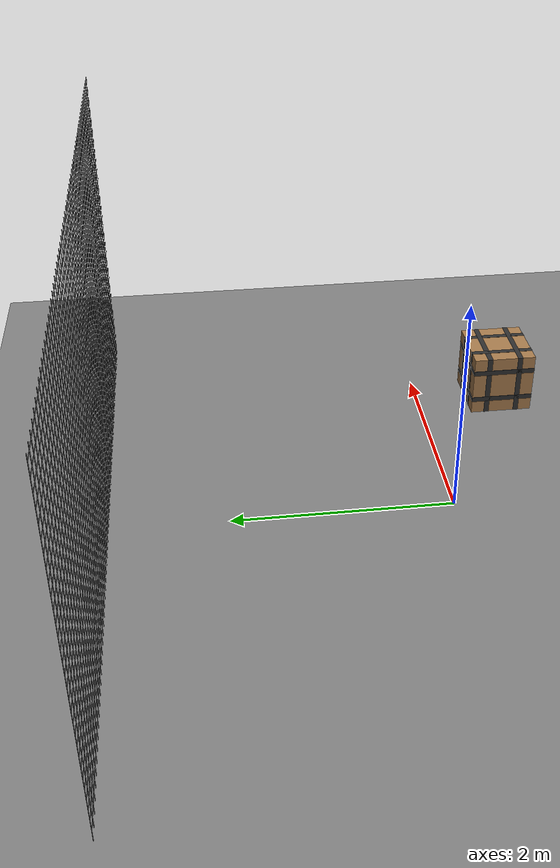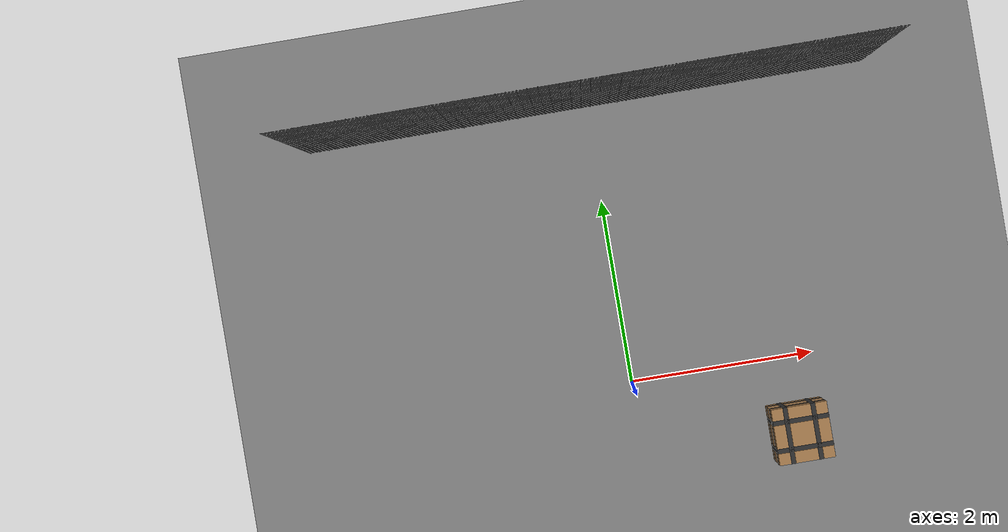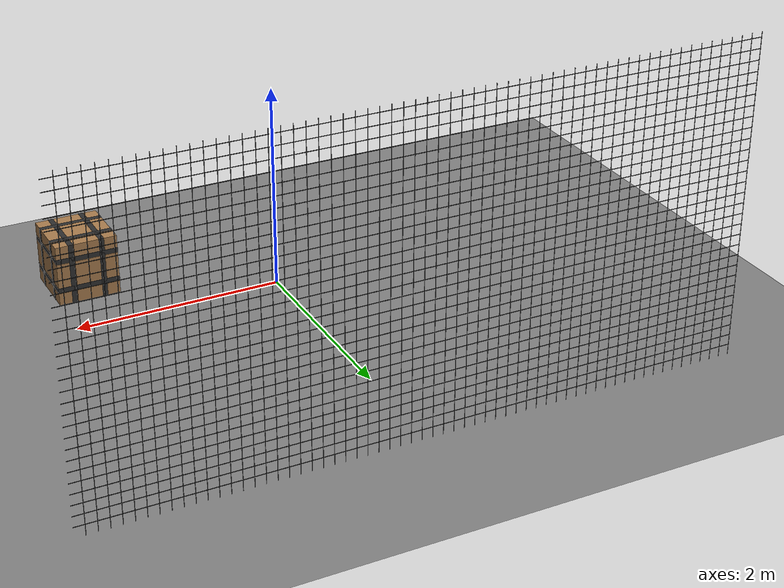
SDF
<sdf version="1.9">
 <world name="ecps295_cage20">
  <model name="ground_plane">
   <static>true</static>
   <link name="link">
    <collision name="collision">
     <geometry><plane><normal>0 0 1</normal><size>50 50</size></plane></geometry>
    </collision>
    <visual name="visual">
     <geometry><plane><normal>0 0 1</normal><size>50 50</size></plane></geometry>
     <material><ambient>0.5 0.5 0.5 1</ambient><diffuse>0.5 0.5 0.5 1</diffuse></material>
    </visual>
   </link>
  </model>
  <model name="net_n">
   <static>true</static>
   <link name="link">
    <collision name="c">
     <pose>0.000 3.050 1.525 0 0 0</pose>
     <geometry><box><size>6.100 0.020 3.050</size></box></geometry>
    </collision>
    <visual name="v0">
     <pose>-3.050 3.050 1.525 0 0 0.0000</pose>
     <geometry><box><size>0.004 0.004 3.050</size></box></geometry>
     <material><ambient>0.16 0.16 0.16 1</ambient><diffuse>0.16 0.16 0.16 1</diffuse></material>
    </visual>
    <visual name="v1">
     <pose>-2.950 3.050 1.525 0 0 0.0000</pose>
     <geometry><box><size>0.004 0.004 3.050</size></box></geometry>
     <material><ambient>0.16 0.16 0.16 1</ambient><diffuse>0.16 0.16 0.16 1</diffuse></material>
    </visual>
    <visual name="v2">
     <pose>-2.850 3.050 1.525 0 0 0.0000</pose>
     <geometry><box><size>0.004 0.004 3.050</size></box></geometry>
     <material><ambient>0.16 0.16 0.16 1</ambient><diffuse>0.16 0.16 0.16 1</diffuse></material>
    </visual>
    <visual name="v3">
     <pose>-2.750 3.050 1.525 0 0 0.0000</pose>
     <geometry><box><size>0.004 0.004 3.050</size></box></geometry>
     <material><ambient>0.16 0.16 0.16 1</ambient><diffuse>0.16 0.16 0.16 1</diffuse></material>
    </visual>
    <visual name="v4">
     <pose>-2.650 3.050 1.525 0 0 0.0000</pose>
     <geometry><box><size>0.004 0.004 3.050</size></box></geometry>
     <material><ambient>0.16 0.16 0.16 1</ambient><diffuse>0.16 0.16 0.16 1</diffuse></material>
    </visual>
    <visual name="v5">
     <pose>-2.550 3.050 1.525 0 0 0.0000</pose>
     <geometry><box><size>0.004 0.004 3.050</size></box></geometry>
     <material><ambient>0.16 0.16 0.16 1</ambient><diffuse>0.16 0.16 0.16 1</diffuse></material>
    </visual>
    <visual name="v6">
     <pose>-2.450 3.050 1.525 0 0 0.0000</pose>
     <geometry><box><size>0.004 0.004 3.050</size></box></geometry>
     <material><ambient>0.16 0.16 0.16 1</ambient><diffuse>0.16 0.16 0.16 1</diffuse></material>
    </visual>
    <visual name="v7">
     <pose>-2.350 3.050 1.525 0 0 0.0000</pose>
     <geometry><box><size>0.004 0.004 3.050</size></box></geometry>
     <material><ambient>0.16 0.16 0.16 1</ambient><diffuse>0.16 0.16 0.16 1</diffuse></material>
    </visual>
    <visual name="v8">
     <pose>-2.250 3.050 1.525 0 0 0.0000</pose>
     <geometry><box><size>0.004 0.004 3.050</size></box></geometry>
     <material><ambient>0.16 0.16 0.16 1</ambient><diffuse>0.16 0.16 0.16 1</diffuse></material>
    </visual>
    <visual name="v9">
     <pose>-2.150 3.050 1.525 0 0 0.0000</pose>
     <geometry><box><size>0.004 0.004 3.050</size></box></geometry>
     <material><ambient>0.16 0.16 0.16 1</ambient><diffuse>0.16 0.16 0.16 1</diffuse></material>
    </visual>
    <visual name="v10">
     <pose>-2.050 3.050 1.525 0 0 0.0000</pose>
     <geometry><box><size>0.004 0.004 3.050</size></box></geometry>
     <material><ambient>0.16 0.16 0.16 1</ambient><diffuse>0.16 0.16 0.16 1</diffuse></material>
    </visual>
    <visual name="v11">
     <pose>-1.950 3.050 1.525 0 0 0.0000</pose>
     <geometry><box><size>0.004 0.004 3.050</size></box></geometry>
     <material><ambient>0.16 0.16 0.16 1</ambient><diffuse>0.16 0.16 0.16 1</diffuse></material>
    </visual>
    <visual name="v12">
     <pose>-1.850 3.050 1.525 0 0 0.0000</pose>
     <geometry><box><size>0.004 0.004 3.050</size></box></geometry>
     <material><ambient>0.16 0.16 0.16 1</ambient><diffuse>0.16 0.16 0.16 1</diffuse></material>
    </visual>
    <visual name="v13">
     <pose>-1.750 3.050 1.525 0 0 0.0000</pose>
     <geometry><box><size>0.004 0.004 3.050</size></box></geometry>
     <material><ambient>0.16 0.16 0.16 1</ambient><diffuse>0.16 0.16 0.16 1</diffuse></material>
    </visual>
    <visual name="v14">
     <pose>-1.650 3.050 1.525 0 0 0.0000</pose>
     <geometry><box><size>0.004 0.004 3.050</size></box></geometry>
     <material><ambient>0.16 0.16 0.16 1</ambient><diffuse>0.16 0.16 0.16 1</diffuse></material>
    </visual>
    <visual name="v15">
     <pose>-1.550 3.050 1.525 0 0 0.0000</pose>
     <geometry><box><size>0.004 0.004 3.050</size></box></geometry>
     <material><ambient>0.16 0.16 0.16 1</ambient><diffuse>0.16 0.16 0.16 1</diffuse></material>
    </visual>
    <visual name="v16">
     <pose>-1.450 3.050 1.525 0 0 0.0000</pose>
     <geometry><box><size>0.004 0.004 3.050</size></box></geometry>
     <material><ambient>0.16 0.16 0.16 1</ambient><diffuse>0.16 0.16 0.16 1</diffuse></material>
    </visual>
    <visual name="v17">
     <pose>-1.350 3.050 1.525 0 0 0.0000</pose>
     <geometry><box><size>0.004 0.004 3.050</size></box></geometry>
     <material><ambient>0.16 0.16 0.16 1</ambient><diffuse>0.16 0.16 0.16 1</diffuse></material>
    </visual>
    <visual name="v18">
     <pose>-1.250 3.050 1.525 0 0 0.0000</pose>
     <geometry><box><size>0.004 0.004 3.050</size></box></geometry>
     <material><ambient>0.16 0.16 0.16 1</ambient><diffuse>0.16 0.16 0.16 1</diffuse></material>
    </visual>
    <visual name="v19">
     <pose>-1.150 3.050 1.525 0 0 0.0000</pose>
     <geometry><box><size>0.004 0.004 3.050</size></box></geometry>
     <material><ambient>0.16 0.16 0.16 1</ambient><diffuse>0.16 0.16 0.16 1</diffuse></material>
    </visual>
    <visual name="v20">
     <pose>-1.050 3.050 1.525 0 0 0.0000</pose>
     <geometry><box><size>0.004 0.004 3.050</size></box></geometry>
     <material><ambient>0.16 0.16 0.16 1</ambient><diffuse>0.16 0.16 0.16 1</diffuse></material>
    </visual>
    <visual name="v21">
     <pose>-0.950 3.050 1.525 0 0 0.0000</pose>
     <geometry><box><size>0.004 0.004 3.050</size></box></geometry>
     <material><ambient>0.16 0.16 0.16 1</ambient><diffuse>0.16 0.16 0.16 1</diffuse></material>
    </visual>
    <visual name="v22">
     <pose>-0.850 3.050 1.525 0 0 0.0000</pose>
     <geometry><box><size>0.004 0.004 3.050</size></box></geometry>
     <material><ambient>0.16 0.16 0.16 1</ambient><diffuse>0.16 0.16 0.16 1</diffuse></material>
    </visual>
    <visual name="v23">
     <pose>-0.750 3.050 1.525 0 0 0.0000</pose>
     <geometry><box><size>0.004 0.004 3.050</size></box></geometry>
     <material><ambient>0.16 0.16 0.16 1</ambient><diffuse>0.16 0.16 0.16 1</diffuse></material>
    </visual>
    <visual name="v24">
     <pose>-0.650 3.050 1.525 0 0 0.0000</pose>
     <geometry><box><size>0.004 0.004 3.050</size></box></geometry>
     <material><ambient>0.16 0.16 0.16 1</ambient><diffuse>0.16 0.16 0.16 1</diffuse></material>
    </visual>
    <visual name="v25">
     <pose>-0.550 3.050 1.525 0 0 0.0000</pose>
     <geometry><box><size>0.004 0.004 3.050</size></box></geometry>
     <material><ambient>0.16 0.16 0.16 1</ambient><diffuse>0.16 0.16 0.16 1</diffuse></material>
    </visual>
    <visual name="v26">
     <pose>-0.450 3.050 1.525 0 0 0.0000</pose>
     <geometry><box><size>0.004 0.004 3.050</size></box></geometry>
     <material><ambient>0.16 0.16 0.16 1</ambient><diffuse>0.16 0.16 0.16 1</diffuse></material>
    </visual>
    <visual name="v27">
     <pose>-0.350 3.050 1.525 0 0 0.0000</pose>
     <geometry><box><size>0.004 0.004 3.050</size></box></geometry>
     <material><ambient>0.16 0.16 0.16 1</ambient><diffuse>0.16 0.16 0.16 1</diffuse></material>
    </visual>
    <visual name="v28">
     <pose>-0.250 3.050 1.525 0 0 0.0000</pose>
     <geometry><box><size>0.004 0.004 3.050</size></box></geometry>
     <material><ambient>0.16 0.16 0.16 1</ambient><diffuse>0.16 0.16 0.16 1</diffuse></material>
    </visual>
    <visual name="v29">
     <pose>-0.150 3.050 1.525 0 0 0.0000</pose>
     <geometry><box><size>0.004 0.004 3.050</size></box></geometry>
     <material><ambient>0.16 0.16 0.16 1</ambient><diffuse>0.16 0.16 0.16 1</diffuse></material>
    </visual>
    <visual name="v30">
     <pose>-0.050 3.050 1.525 0 0 0.0000</pose>
     <geometry><box><size>0.004 0.004 3.050</size></box></geometry>
     <material><ambient>0.16 0.16 0.16 1</ambient><diffuse>0.16 0.16 0.16 1</diffuse></material>
    </visual>
    <visual name="v31">
     <pose>0.050 3.050 1.525 0 0 0.0000</pose>
     <geometry><box><size>0.004 0.004 3.050</size></box></geometry>
     <material><ambient>0.16 0.16 0.16 1</ambient><diffuse>0.16 0.16 0.16 1</diffuse></material>
    </visual>
    <visual name="v32">
     <pose>0.150 3.050 1.525 0 0 0.0000</pose>
     <geometry><box><size>0.004 0.004 3.050</size></box></geometry>
     <material><ambient>0.16 0.16 0.16 1</ambient><diffuse>0.16 0.16 0.16 1</diffuse></material>
    </visual>
    <visual name="v33">
     <pose>0.250 3.050 1.525 0 0 0.0000</pose>
     <geometry><box><size>0.004 0.004 3.050</size></box></geometry>
     <material><ambient>0.16 0.16 0.16 1</ambient><diffuse>0.16 0.16 0.16 1</diffuse></material>
    </visual>
    <visual name="v34">
     <pose>0.350 3.050 1.525 0 0 0.0000</pose>
     <geometry><box><size>0.004 0.004 3.050</size></box></geometry>
     <material><ambient>0.16 0.16 0.16 1</ambient><diffuse>0.16 0.16 0.16 1</diffuse></material>
    </visual>
    <visual name="v35">
     <pose>0.450 3.050 1.525 0 0 0.0000</pose>
     <geometry><box><size>0.004 0.004 3.050</size></box></geometry>
     <material><ambient>0.16 0.16 0.16 1</ambient><diffuse>0.16 0.16 0.16 1</diffuse></material>
    </visual>
    <visual name="v36">
     <pose>0.550 3.050 1.525 0 0 0.0000</pose>
     <geometry><box><size>0.004 0.004 3.050</size></box></geometry>
     <material><ambient>0.16 0.16 0.16 1</ambient><diffuse>0.16 0.16 0.16 1</diffuse></material>
    </visual>
    <visual name="v37">
     <pose>0.650 3.050 1.525 0 0 0.0000</pose>
     <geometry><box><size>0.004 0.004 3.050</size></box></geometry>
     <material><ambient>0.16 0.16 0.16 1</ambient><diffuse>0.16 0.16 0.16 1</diffuse></material>
    </visual>
    <visual name="v38">
     <pose>0.750 3.050 1.525 0 0 0.0000</pose>
     <geometry><box><size>0.004 0.004 3.050</size></box></geometry>
     <material><ambient>0.16 0.16 0.16 1</ambient><diffuse>0.16 0.16 0.16 1</diffuse></material>
    </visual>
    <visual name="v39">
     <pose>0.850 3.050 1.525 0 0 0.0000</pose>
     <geometry><box><size>0.004 0.004 3.050</size></box></geometry>
     <material><ambient>0.16 0.16 0.16 1</ambient><diffuse>0.16 0.16 0.16 1</diffuse></material>
    </visual>
    <visual name="v40">
     <pose>0.950 3.050 1.525 0 0 0.0000</pose>
     <geometry><box><size>0.004 0.004 3.050</size></box></geometry>
     <material><ambient>0.16 0.16 0.16 1</ambient><diffuse>0.16 0.16 0.16 1</diffuse></material>
    </visual>
    <visual name="v41">
     <pose>1.050 3.050 1.525 0 0 0.0000</pose>
     <geometry><box><size>0.004 0.004 3.050</size></box></geometry>
     <material><ambient>0.16 0.16 0.16 1</ambient><diffuse>0.16 0.16 0.16 1</diffuse></material>
    </visual>
    <visual name="v42">
     <pose>1.150 3.050 1.525 0 0 0.0000</pose>
     <geometry><box><size>0.004 0.004 3.050</size></box></geometry>
     <material><ambient>0.16 0.16 0.16 1</ambient><diffuse>0.16 0.16 0.16 1</diffuse></material>
    </visual>
    <visual name="v43">
     <pose>1.250 3.050 1.525 0 0 0.0000</pose>
     <geometry><box><size>0.004 0.004 3.050</size></box></geometry>
     <material><ambient>0.16 0.16 0.16 1</ambient><diffuse>0.16 0.16 0.16 1</diffuse></material>
    </visual>
    <visual name="v44">
     <pose>1.350 3.050 1.525 0 0 0.0000</pose>
     <geometry><box><size>0.004 0.004 3.050</size></box></geometry>
     <material><ambient>0.16 0.16 0.16 1</ambient><diffuse>0.16 0.16 0.16 1</diffuse></material>
    </visual>
    <visual name="v45">
     <pose>1.450 3.050 1.525 0 0 0.0000</pose>
     <geometry><box><size>0.004 0.004 3.050</size></box></geometry>
     <material><ambient>0.16 0.16 0.16 1</ambient><diffuse>0.16 0.16 0.16 1</diffuse></material>
    </visual>
    <visual name="v46">
     <pose>1.550 3.050 1.525 0 0 0.0000</pose>
     <geometry><box><size>0.004 0.004 3.050</size></box></geometry>
     <material><ambient>0.16 0.16 0.16 1</ambient><diffuse>0.16 0.16 0.16 1</diffuse></material>
    </visual>
    <visual name="v47">
     <pose>1.650 3.050 1.525 0 0 0.0000</pose>
     <geometry><box><size>0.004 0.004 3.050</size></box></geometry>
     <material><ambient>0.16 0.16 0.16 1</ambient><diffuse>0.16 0.16 0.16 1</diffuse></material>
    </visual>
    <visual name="v48">
     <pose>1.750 3.050 1.525 0 0 0.0000</pose>
     <geometry><box><size>0.004 0.004 3.050</size></box></geometry>
     <material><ambient>0.16 0.16 0.16 1</ambient><diffuse>0.16 0.16 0.16 1</diffuse></material>
    </visual>
    <visual name="v49">
     <pose>1.850 3.050 1.525 0 0 0.0000</pose>
     <geometry><box><size>0.004 0.004 3.050</size></box></geometry>
     <material><ambient>0.16 0.16 0.16 1</ambient><diffuse>0.16 0.16 0.16 1</diffuse></material>
    </visual>
    <visual name="v50">
     <pose>1.950 3.050 1.525 0 0 0.0000</pose>
     <geometry><box><size>0.004 0.004 3.050</size></box></geometry>
     <material><ambient>0.16 0.16 0.16 1</ambient><diffuse>0.16 0.16 0.16 1</diffuse></material>
    </visual>
    <visual name="v51">
     <pose>2.050 3.050 1.525 0 0 0.0000</pose>
     <geometry><box><size>0.004 0.004 3.050</size></box></geometry>
     <material><ambient>0.16 0.16 0.16 1</ambient><diffuse>0.16 0.16 0.16 1</diffuse></material>
    </visual>
    <visual name="v52">
     <pose>2.150 3.050 1.525 0 0 0.0000</pose>
     <geometry><box><size>0.004 0.004 3.050</size></box></geometry>
     <material><ambient>0.16 0.16 0.16 1</ambient><diffuse>0.16 0.16 0.16 1</diffuse></material>
    </visual>
    <visual name="v53">
     <pose>2.250 3.050 1.525 0 0 0.0000</pose>
     <geometry><box><size>0.004 0.004 3.050</size></box></geometry>
     <material><ambient>0.16 0.16 0.16 1</ambient><diffuse>0.16 0.16 0.16 1</diffuse></material>
    </visual>
    <visual name="v54">
     <pose>2.350 3.050 1.525 0 0 0.0000</pose>
     <geometry><box><size>0.004 0.004 3.050</size></box></geometry>
     <material><ambient>0.16 0.16 0.16 1</ambient><diffuse>0.16 0.16 0.16 1</diffuse></material>
    </visual>
    <visual name="v55">
     <pose>2.450 3.050 1.525 0 0 0.0000</pose>
     <geometry><box><size>0.004 0.004 3.050</size></box></geometry>
     <material><ambient>0.16 0.16 0.16 1</ambient><diffuse>0.16 0.16 0.16 1</diffuse></material>
    </visual>
    <visual name="v56">
     <pose>2.550 3.050 1.525 0 0 0.0000</pose>
     <geometry><box><size>0.004 0.004 3.050</size></box></geometry>
     <material><ambient>0.16 0.16 0.16 1</ambient><diffuse>0.16 0.16 0.16 1</diffuse></material>
    </visual>
    <visual name="v57">
     <pose>2.650 3.050 1.525 0 0 0.0000</pose>
     <geometry><box><size>0.004 0.004 3.050</size></box></geometry>
     <material><ambient>0.16 0.16 0.16 1</ambient><diffuse>0.16 0.16 0.16 1</diffuse></material>
    </visual>
    <visual name="v58">
     <pose>2.750 3.050 1.525 0 0 0.0000</pose>
     <geometry><box><size>0.004 0.004 3.050</size></box></geometry>
     <material><ambient>0.16 0.16 0.16 1</ambient><diffuse>0.16 0.16 0.16 1</diffuse></material>
    </visual>
    <visual name="v59">
     <pose>2.850 3.050 1.525 0 0 0.0000</pose>
     <geometry><box><size>0.004 0.004 3.050</size></box></geometry>
     <material><ambient>0.16 0.16 0.16 1</ambient><diffuse>0.16 0.16 0.16 1</diffuse></material>
    </visual>
    <visual name="v60">
     <pose>2.950 3.050 1.525 0 0 0.0000</pose>
     <geometry><box><size>0.004 0.004 3.050</size></box></geometry>
     <material><ambient>0.16 0.16 0.16 1</ambient><diffuse>0.16 0.16 0.16 1</diffuse></material>
    </visual>
    <visual name="h1">
     <pose>0.000 3.050 0.100 0 0 0.0000</pose>
     <geometry><box><size>6.100 0.004 0.004</size></box></geometry>
     <material><ambient>0.16 0.16 0.16 1</ambient><diffuse>0.16 0.16 0.16 1</diffuse></material>
    </visual>
    <visual name="h2">
     <pose>0.000 3.050 0.200 0 0 0.0000</pose>
     <geometry><box><size>6.100 0.004 0.004</size></box></geometry>
     <material><ambient>0.16 0.16 0.16 1</ambient><diffuse>0.16 0.16 0.16 1</diffuse></material>
    </visual>
    <visual name="h3">
     <pose>0.000 3.050 0.300 0 0 0.0000</pose>
     <geometry><box><size>6.100 0.004 0.004</size></box></geometry>
     <material><ambient>0.16 0.16 0.16 1</ambient><diffuse>0.16 0.16 0.16 1</diffuse></material>
    </visual>
    <visual name="h4">
     <pose>0.000 3.050 0.400 0 0 0.0000</pose>
     <geometry><box><size>6.100 0.004 0.004</size></box></geometry>
     <material><ambient>0.16 0.16 0.16 1</ambient><diffuse>0.16 0.16 0.16 1</diffuse></material>
    </visual>
    <visual name="h5">
     <pose>0.000 3.050 0.500 0 0 0.0000</pose>
     <geometry><box><size>6.100 0.004 0.004</size></box></geometry>
     <material><ambient>0.16 0.16 0.16 1</ambient><diffuse>0.16 0.16 0.16 1</diffuse></material>
    </visual>
    <visual name="h6">
     <pose>0.000 3.050 0.600 0 0 0.0000</pose>
     <geometry><box><size>6.100 0.004 0.004</size></box></geometry>
     <material><ambient>0.16 0.16 0.16 1</ambient><diffuse>0.16 0.16 0.16 1</diffuse></material>
    </visual>
    <visual name="h7">
     <pose>0.000 3.050 0.700 0 0 0.0000</pose>
     <geometry><box><size>6.100 0.004 0.004</size></box></geometry>
     <material><ambient>0.16 0.16 0.16 1</ambient><diffuse>0.16 0.16 0.16 1</diffuse></material>
    </visual>
    <visual name="h8">
     <pose>0.000 3.050 0.800 0 0 0.0000</pose>
     <geometry><box><size>6.100 0.004 0.004</size></box></geometry>
     <material><ambient>0.16 0.16 0.16 1</ambient><diffuse>0.16 0.16 0.16 1</diffuse></material>
    </visual>
    <visual name="h9">
     <pose>0.000 3.050 0.900 0 0 0.0000</pose>
     <geometry><box><size>6.100 0.004 0.004</size></box></geometry>
     <material><ambient>0.16 0.16 0.16 1</ambient><diffuse>0.16 0.16 0.16 1</diffuse></material>
    </visual>
    <visual name="h10">
     <pose>0.000 3.050 1.000 0 0 0.0000</pose>
     <geometry><box><size>6.100 0.004 0.004</size></box></geometry>
     <material><ambient>0.16 0.16 0.16 1</ambient><diffuse>0.16 0.16 0.16 1</diffuse></material>
    </visual>
    <visual name="h11">
     <pose>0.000 3.050 1.100 0 0 0.0000</pose>
     <geometry><box><size>6.100 0.004 0.004</size></box></geometry>
     <material><ambient>0.16 0.16 0.16 1</ambient><diffuse>0.16 0.16 0.16 1</diffuse></material>
    </visual>
    <visual name="h12">
     <pose>0.000 3.050 1.200 0 0 0.0000</pose>
     <geometry><box><size>6.100 0.004 0.004</size></box></geometry>
     <material><ambient>0.16 0.16 0.16 1</ambient><diffuse>0.16 0.16 0.16 1</diffuse></material>
    </visual>
    <visual name="h13">
     <pose>0.000 3.050 1.300 0 0 0.0000</pose>
     <geometry><box><size>6.100 0.004 0.004</size></box></geometry>
     <material><ambient>0.16 0.16 0.16 1</ambient><diffuse>0.16 0.16 0.16 1</diffuse></material>
    </visual>
    <visual name="h14">
     <pose>0.000 3.050 1.400 0 0 0.0000</pose>
     <geometry><box><size>6.100 0.004 0.004</size></box></geometry>
     <material><ambient>0.16 0.16 0.16 1</ambient><diffuse>0.16 0.16 0.16 1</diffuse></material>
    </visual>
    <visual name="h15">
     <pose>0.000 3.050 1.500 0 0 0.0000</pose>
     <geometry><box><size>6.100 0.004 0.004</size></box></geometry>
     <material><ambient>0.16 0.16 0.16 1</ambient><diffuse>0.16 0.16 0.16 1</diffuse></material>
    </visual>
    <visual name="h16">
     <pose>0.000 3.050 1.600 0 0 0.0000</pose>
     <geometry><box><size>6.100 0.004 0.004</size></box></geometry>
     <material><ambient>0.16 0.16 0.16 1</ambient><diffuse>0.16 0.16 0.16 1</diffuse></material>
    </visual>
    <visual name="h17">
     <pose>0.000 3.050 1.700 0 0 0.0000</pose>
     <geometry><box><size>6.100 0.004 0.004</size></box></geometry>
     <material><ambient>0.16 0.16 0.16 1</ambient><diffuse>0.16 0.16 0.16 1</diffuse></material>
    </visual>
    <visual name="h18">
     <pose>0.000 3.050 1.800 0 0 0.0000</pose>
     <geometry><box><size>6.100 0.004 0.004</size></box></geometry>
     <material><ambient>0.16 0.16 0.16 1</ambient><diffuse>0.16 0.16 0.16 1</diffuse></material>
    </visual>
    <visual name="h19">
     <pose>0.000 3.050 1.900 0 0 0.0000</pose>
     <geometry><box><size>6.100 0.004 0.004</size></box></geometry>
     <material><ambient>0.16 0.16 0.16 1</ambient><diffuse>0.16 0.16 0.16 1</diffuse></material>
    </visual>
    <visual name="h20">
     <pose>0.000 3.050 2.000 0 0 0.0000</pose>
     <geometry><box><size>6.100 0.004 0.004</size></box></geometry>
     <material><ambient>0.16 0.16 0.16 1</ambient><diffuse>0.16 0.16 0.16 1</diffuse></material>
    </visual>
    <visual name="h21">
     <pose>0.000 3.050 2.100 0 0 0.0000</pose>
     <geometry><box><size>6.100 0.004 0.004</size></box></geometry>
     <material><ambient>0.16 0.16 0.16 1</ambient><diffuse>0.16 0.16 0.16 1</diffuse></material>
    </visual>
    <visual name="h22">
     <pose>0.000 3.050 2.200 0 0 0.0000</pose>
     <geometry><box><size>6.100 0.004 0.004</size></box></geometry>
     <material><ambient>0.16 0.16 0.16 1</ambient><diffuse>0.16 0.16 0.16 1</diffuse></material>
    </visual>
    <visual name="h23">
     <pose>0.000 3.050 2.300 0 0 0.0000</pose>
     <geometry><box><size>6.100 0.004 0.004</size></box></geometry>
     <material><ambient>0.16 0.16 0.16 1</ambient><diffuse>0.16 0.16 0.16 1</diffuse></material>
    </visual>
    <visual name="h24">
     <pose>0.000 3.050 2.400 0 0 0.0000</pose>
     <geometry><box><size>6.100 0.004 0.004</size></box></geometry>
     <material><ambient>0.16 0.16 0.16 1</ambient><diffuse>0.16 0.16 0.16 1</diffuse></material>
    </visual>
    <visual name="h25">
     <pose>0.000 3.050 2.500 0 0 0.0000</pose>
     <geometry><box><size>6.100 0.004 0.004</size></box></geometry>
     <material><ambient>0.16 0.16 0.16 1</ambient><diffuse>0.16 0.16 0.16 1</diffuse></material>
    </visual>
    <visual name="h26">
     <pose>0.000 3.050 2.600 0 0 0.0000</pose>
     <geometry><box><size>6.100 0.004 0.004</size></box></geometry>
     <material><ambient>0.16 0.16 0.16 1</ambient><diffuse>0.16 0.16 0.16 1</diffuse></material>
    </visual>
    <visual name="h27">
     <pose>0.000 3.050 2.700 0 0 0.0000</pose>
     <geometry><box><size>6.100 0.004 0.004</size></box></geometry>
     <material><ambient>0.16 0.16 0.16 1</ambient><diffuse>0.16 0.16 0.16 1</diffuse></material>
    </visual>
    <visual name="h28">
     <pose>0.000 3.050 2.800 0 0 0.0000</pose>
     <geometry><box><size>6.100 0.004 0.004</size></box></geometry>
     <material><ambient>0.16 0.16 0.16 1</ambient><diffuse>0.16 0.16 0.16 1</diffuse></material>
    </visual>
    <visual name="h29">
     <pose>0.000 3.050 2.900 0 0 0.0000</pose>
     <geometry><box><size>6.100 0.004 0.004</size></box></geometry>
     <material><ambient>0.16 0.16 0.16 1</ambient><diffuse>0.16 0.16 0.16 1</diffuse></material>
    </visual>
    <visual name="h30">
     <pose>0.000 3.050 3.000 0 0 0.0000</pose>
     <geometry><box><size>6.100 0.004 0.004</size></box></geometry>
     <material><ambient>0.16 0.16 0.16 1</ambient><diffuse>0.16 0.16 0.16 1</diffuse></material>
    </visual>
   </link>
  </model>
  <model name="box_e">
   <static>true</static>
   <pose>1.7 -0.8 0.3 0 0 0</pose>
   <link name="link">
    <collision name="c"><geometry><box><size>0.6 0.6 0.6</size></box></geometry></collision>
    <visual name="v">
     <geometry><box><size>0.6 0.6 0.6</size></box></geometry>
     <material><ambient>0.65 0.48 0.30 1</ambient><diffuse>0.65 0.48 0.30 1</diffuse></material>
    </visual>
    <visual name="tape_ring0">
     <pose>0.000 0.000 -0.150 0 0 0</pose>
     <geometry><box><size>0.604 0.604 0.050</size></box></geometry>
     <material><ambient>0.18 0.18 0.18 1</ambient><diffuse>0.18 0.18 0.18 1</diffuse></material>
    </visual>
    <visual name="tape_bx0">
     <pose>-0.150 0.000 0.000 0 0 0</pose>
     <geometry><box><size>0.050 0.604 0.604</size></box></geometry>
     <material><ambient>0.18 0.18 0.18 1</ambient><diffuse>0.18 0.18 0.18 1</diffuse></material>
    </visual>
    <visual name="tape_by0">
     <pose>0.000 -0.150 0.000 0 0 0</pose>
     <geometry><box><size>0.604 0.050 0.604</size></box></geometry>
     <material><ambient>0.18 0.18 0.18 1</ambient><diffuse>0.18 0.18 0.18 1</diffuse></material>
    </visual>
    <visual name="tape_ring1">
     <pose>0.000 0.000 0.150 0 0 0</pose>
     <geometry><box><size>0.604 0.604 0.050</size></box></geometry>
     <material><ambient>0.18 0.18 0.18 1</ambient><diffuse>0.18 0.18 0.18 1</diffuse></material>
    </visual>
    <visual name="tape_bx1">
     <pose>0.150 0.000 0.000 0 0 0</pose>
     <geometry><box><size>0.050 0.604 0.604</size></box></geometry>
     <material><ambient>0.18 0.18 0.18 1</ambient><diffuse>0.18 0.18 0.18 1</diffuse></material>
    </visual>
    <visual name="tape_by1">
     <pose>0.000 0.150 0.000 0 0 0</pose>
     <geometry><box><size>0.604 0.050 0.604</size></box></geometry>
     <material><ambient>0.18 0.18 0.18 1</ambient><diffuse>0.18 0.18 0.18 1</diffuse></material>
    </visual>
   </link>
  </model>
 </world>
</sdf>
